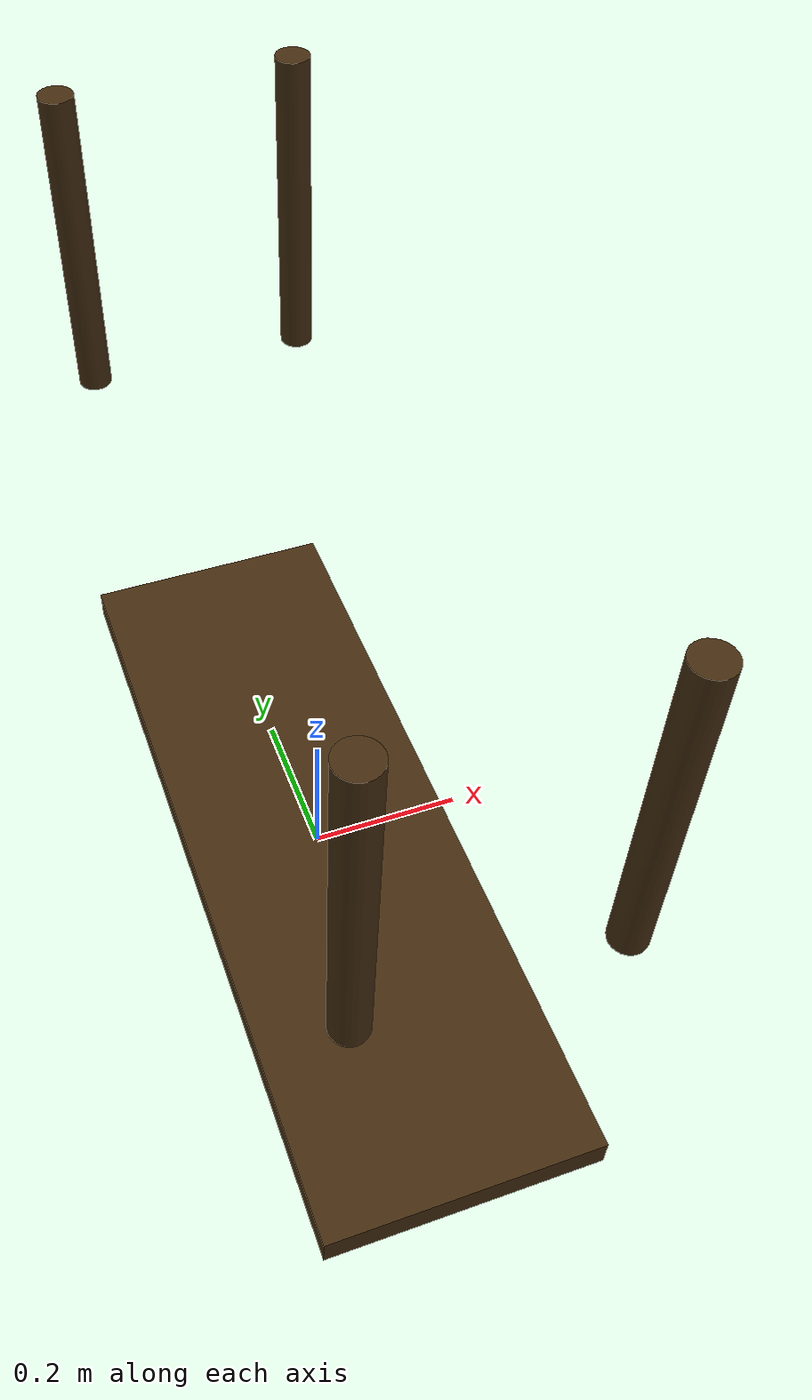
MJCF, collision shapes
<mujoco model="longtable">
    <compiler meshdir="assets" texturedir="assets"/>
    <asset>
        <texture name="texmarble" type="cube" file="marble.png"/>
        <material name="matmarble" texture="texmarble" rgba=".7 .7 .7 1"/>
        <mesh name="longtable_mesh" file="longtable.stl" scale="0.35 0.7 1.1" />
        <!--base size is 0.8m-->
    </asset>

    <default>
        <default class="collision">
            <geom condim="6" group="0" />
        </default>
        <default class="visual">
            <geom condim="6" group="1" conaffinity="0" contype="0" />
        </default>
    </default>

    <worldbody>
      <body name="base_link">
		<light mode="fixed" directional="false" diffuse=".8 .8 .8" specular="0.3 0.3 0.3" pos="0 0 -4.0" dir="0 0 1" active="false"/>
        <geom name ="main" class="collision" type="box" size="0.175 0.525 .022" rgba="0.266754 0.174546 0.0644028 1" />
        <geom class="collision" type="cylinder" size="0.021 0.2" pos="0.14 -0.49 0.66"  rgba="0.266754 0.174546 0.0644028 1" />
        <geom class="collision" type="cylinder" size="0.021 0.2" pos="-0.14 -0.49 0.66"  rgba="0.266754 0.174546 0.0644028 1" />
        <geom class="collision" type="cylinder" size="0.021 0.2" pos="0.14 0.49 0.66"  rgba="0.266754 0.174546 0.0644028 1" />
        <geom class="collision" type="cylinder" size="0.021 0.2" pos="-0.14 0.49 0.66"  rgba="0.266754 0.174546 0.0644028 1" />
        <geom class="visual" type="mesh" mesh="longtable_mesh" material="matmarble" />
      </body>
    </worldbody>
</mujoco>
